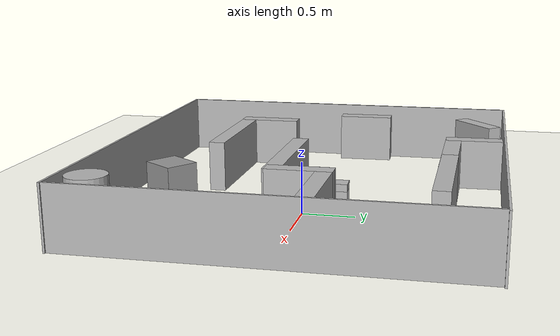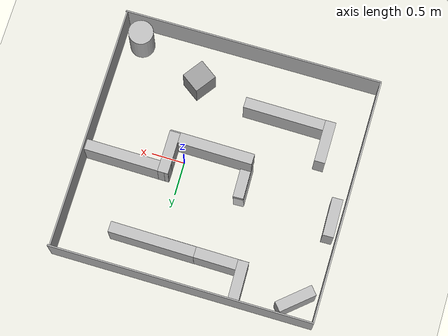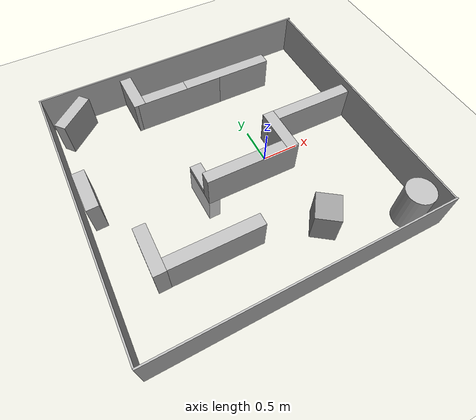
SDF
<sdf version="1.6">
 <world name="default">
  <light name="sun" type="directional">
   <pose>0 0 10 0 -0 0</pose>
   <diffuse>0.8 0.8 0.8 1</diffuse>
   <specular>0.2 0.2 0.2 1</specular>
   <attenuation>
    <range>1000</range>
    <constant>0.9</constant>
    <linear>0.01</linear>
    <quadratic>0.001</quadratic>
   </attenuation>
   <direction>-0.5 0.1 -0.9</direction>
  </light>
  <model name="ground_plane">
   <static>1</static>
   <link name="link">
    <collision name="collision">
     <geometry><plane><normal>0 0 1</normal><size>100 100</size></plane></geometry>
     <surface><friction><ode><mu>100</mu><mu2>50</mu2></ode></friction></surface>
    </collision>
    <visual name="visual">
     <cast_shadows>0</cast_shadows>
     <geometry><plane><normal>0 0 1</normal><size>100 100</size></plane></geometry>
     <material>
      <script><uri>file://media/materials/scripts/gazebo.material</uri><name>Gazebo/Grey</name></script>
     </material>
    </visual>
   </link>
  </model>
  <gravity>0 0 -9.8</gravity>
  <magnetic_field>6e-06 2.3e-05 -4.2e-05</magnetic_field>
  <atmosphere type="adiabatic"/>
  <physics name="default_physics" default="0" type="ode">
   <max_step_size>0.001</max_step_size>
   <real_time_factor>1</real_time_factor>
   <real_time_update_rate>1000</real_time_update_rate>
  </physics>
  <scene><ambient>0.4 0.4 0.4 1</ambient><background>0.7 0.7 0.7 1</background><shadows>1</shadows></scene>
  <spherical_coordinates>
   <surface_model>EARTH_WGS84</surface_model>
   <latitude_deg>0</latitude_deg>
   <longitude_deg>0</longitude_deg>
   <elevation>0</elevation>
   <heading_deg>0</heading_deg>
  </spherical_coordinates>
  <model name="border_Top">
   <pose>-0.50055 1.84001 0.3 -1.4e-05 -0 -4e-06</pose>
   <static>1</static>
   <link name="link">
    <collision name="collision">
     <geometry><box><size>3.9204 0.02 0.6</size></box></geometry>
     <surface><friction><ode><mu>0.01</mu><mu2>0.01</mu2></ode></friction></surface>
    </collision>
    <visual name="visual"><geometry><box><size>3.9204 0.02 0.6</size></box></geometry></visual>
    <inertial>
     <inertia><ixx>1</ixx><ixy>0</ixy><ixz>0</ixz><iyy>1</iyy><iyz>0</iyz><izz>1</izz></inertia>
     <mass>1</mass>
    </inertial>
   </link>
  </model>
  <model name="border_Bot">
   <static>1</static>
   <pose>-0.503699 -1.84002 0.3 1e-05 -0 2e-06</pose>
   <link name="link">
    <collision name="collision">
     <geometry><box><size>3.90283 0.02 0.6</size></box></geometry>
     <surface><friction><ode><mu>0.01</mu><mu2>0.01</mu2></ode></friction></surface>
    </collision>
    <visual name="visual"><geometry><box><size>3.90283 0.02 0.6</size></box></geometry></visual>
    <inertial>
     <inertia><ixx>1</ixx><ixy>0</ixy><ixz>0</ixz><iyy>1</iyy><iyz>0</iyz><izz>1</izz></inertia>
     <mass>1</mass>
    </inertial>
   </link>
  </model>
  <model name="border_Left">
   <static>1</static>
   <pose>-2.45001 5e-06 0.3 0 7e-06 0</pose>
   <link name="link">
    <collision name="collision">
     <geometry><box><size>0.02 3.66 0.6</size></box></geometry>
     <surface><friction><ode><mu>0.01</mu><mu2>0.01</mu2></ode></friction></surface>
    </collision>
    <visual name="visual"><geometry><box><size>0.02 3.66 0.6</size></box></geometry></visual>
    <inertial>
     <inertia><ixx>1</ixx><ixy>0</ixy><ixz>0</ixz><iyy>1</iyy><iyz>0</iyz><izz>1</izz></inertia>
     <mass>1</mass>
    </inertial>
   </link>
  </model>
  <model name="border_Right">
   <static>1</static>
   <pose>1.42515 -1e-06 0.299992 0 -8e-06 -1e-06</pose>
   <link name="link">
    <collision name="collision">
     <geometry><box><size>0.02 3.66 0.6</size></box></geometry>
     <surface><friction><ode><mu>0.01</mu><mu2>0.01</mu2></ode></friction></surface>
    </collision>
    <visual name="visual"><geometry><box><size>0.02 3.66 0.6</size></box></geometry></visual>
    <inertial>
     <inertia><ixx>1</ixx><ixy>0</ixy><ixz>0</ixz><iyy>1</iyy><iyz>0</iyz><izz>1</izz></inertia>
     <mass>1</mass>
    </inertial>
   </link>
  </model>
  <model name="cylinder_1_clone">
   <pose>1.13618 -1.57896 0.3 0 -0 0</pose>
   <static>1</static>
   <link name="link">
    <collision name="collision">
     <geometry><cylinder><radius>0.185832</radius><length>0.6</length></cylinder></geometry>
    </collision>
    <visual name="visual">
     <geometry><cylinder><radius>0.185832</radius><length>0.6</length></cylinder></geometry>
    </visual>
   </link>
  </model>
  <model name="box_1_clone">
   <static>1</static>
   <pose>-1.90949 -0.769164 0.250006 0 3e-06 0.005197</pose>
   <link name="link">
    <collision name="collision">
     <geometry><box><size>0.16 0.633249 0.5</size></box></geometry>
     <surface><friction><ode><mu>0.01</mu><mu2>0.01</mu2></ode></friction></surface>
    </collision>
    <visual name="visual"><geometry><box><size>0.16 0.633249 0.5</size></box></geometry></visual>
    <inertial>
     <inertia><ixx>1</ixx><ixy>0</ixy><ixz>0</ixz><iyy>1</iyy><iyz>0</iyz><izz>1</izz></inertia>
     <mass>1</mass>
    </inertial>
   </link>
  </model>
  <model name="box_1_clone_0">
   <static>1</static>
   <pose>-1.26202 -1.00781 0.250001 3e-06 0 1.56158</pose>
   <link name="link">
    <collision name="collision">
     <geometry><box><size>0.16 1.27479 0.5</size></box></geometry>
     <surface><friction><ode><mu>0.01</mu><mu2>0.01</mu2></ode></friction></surface>
    </collision>
    <visual name="visual"><geometry><box><size>0.16 1.27479 0.5</size></box></geometry></visual>
    <inertial>
     <inertia><ixx>1</ixx><ixy>0</ixy><ixz>0</ixz><iyy>1</iyy><iyz>0</iyz><izz>1</izz></inertia>
     <mass>1</mass>
    </inertial>
   </link>
  </model>
  <model name="box_1_clone_clone">
   <static>1</static>
   <pose>-1.27231 1.53817 0.250008 0 -3e-06 -3.117</pose>
   <link name="link">
    <collision name="collision">
     <geometry><box><size>0.16 0.572947 0.5</size></box></geometry>
     <surface><friction><ode><mu>0.01</mu><mu2>0.01</mu2></ode></friction></surface>
    </collision>
    <visual name="visual"><geometry><box><size>0.16 0.572947 0.5</size></box></geometry></visual>
    <inertial>
     <inertia><ixx>1</ixx><ixy>0</ixy><ixz>0</ixz><iyy>1</iyy><iyz>0</iyz><izz>1</izz></inertia>
     <mass>1</mass>
    </inertial>
   </link>
  </model>
  <model name="unit_box">
   <pose>0.131584 -1.21437 0.238129 0 0 -0.619526</pose>
   <link name="link">
    <inertial>
     <mass>1</mass>
     <inertia>
      <ixx>0.166667</ixx>
      <ixy>0</ixy>
      <ixz>0</ixz>
      <iyy>0.166667</iyy>
      <iyz>0</iyz>
      <izz>0.166667</izz>
     </inertia>
    </inertial>
    <collision name="collision">
     <geometry><box><size>0.319158 0.355382 0.476258</size></box></geometry>
    </collision>
    <visual name="visual">
     <geometry><box><size>0.319158 0.355382 0.476258</size></box></geometry>
     <material>
      <script><name>Gazebo/Grey</name><uri>file://media/materials/scripts/gazebo.material</uri></script>
     </material>
    </visual>
   </link>
  </model>
  <model name="box_1_clone_0_clone">
   <static>1</static>
   <pose>-0.344716 -0.22185 0.249999 3e-06 0 1.56158</pose>
   <link name="link">
    <collision name="collision">
     <geometry><box><size>0.16 1.27479 0.5</size></box></geometry>
     <surface><friction><ode><mu>0.01</mu><mu2>0.01</mu2></ode></friction></surface>
    </collision>
    <visual name="visual"><geometry><box><size>0.16 1.27479 0.5</size></box></geometry></visual>
    <inertial>
     <inertia><ixx>1</ixx><ixy>0</ixy><ixz>0</ixz><iyy>1</iyy><iyz>0</iyz><izz>1</izz></inertia>
     <mass>1</mass>
    </inertial>
   </link>
  </model>
  <model name="box_1_clone_clone_0">
   <static>1</static>
   <pose>0.217124 0.025524 0.250006 0 3e-06 0.005197</pose>
   <link name="link">
    <collision name="collision">
     <geometry><box><size>0.16 0.633249 0.5</size></box></geometry>
     <surface><friction><ode><mu>0.01</mu><mu2>0.01</mu2></ode></friction></surface>
    </collision>
    <visual name="visual"><geometry><box><size>0.16 0.633249 0.5</size></box></geometry></visual>
    <inertial>
     <inertia><ixx>1</ixx><ixy>0</ixy><ixz>0</ixz><iyy>1</iyy><iyz>0</iyz><izz>1</izz></inertia>
     <mass>1</mass>
    </inertial>
   </link>
  </model>
  <model name="box_1_clone_0_clone_clone">
   <static>1</static>
   <pose>0.772221 0.256731 0.249999 3e-06 0 1.56158</pose>
   <link name="link">
    <collision name="collision">
     <geometry><box><size>0.16 1.27479 0.5</size></box></geometry>
     <surface><friction><ode><mu>0.01</mu><mu2>0.01</mu2></ode></friction></surface>
    </collision>
    <visual name="visual"><geometry><box><size>0.16 1.27479 0.5</size></box></geometry></visual>
    <inertial>
     <inertia><ixx>1</ixx><ixy>0</ixy><ixz>0</ixz><iyy>1</iyy><iyz>0</iyz><izz>1</izz></inertia>
     <mass>1</mass>
    </inertial>
   </link>
  </model>
  <model name="box_1_clone_0_clone_clone_0">
   <static>1</static>
   <pose>-0.703924 1.32571 0.249999 3e-06 0 1.56158</pose>
   <link name="link">
    <collision name="collision">
     <geometry><box><size>0.16 1.27479 0.5</size></box></geometry>
     <surface><friction><ode><mu>0.01</mu><mu2>0.01</mu2></ode></friction></surface>
    </collision>
    <visual name="visual"><geometry><box><size>0.16 1.27479 0.5</size></box></geometry></visual>
    <inertial>
     <inertia><ixx>1</ixx><ixy>0</ixy><ixz>0</ixz><iyy>1</iyy><iyz>0</iyz><izz>1</izz></inertia>
     <mass>1</mass>
    </inertial>
   </link>
  </model>
  <model name="box_1_clone_0_clone_clone_1">
   <static>1</static>
   <pose>0.072384 1.3206 0.249999 3e-06 0 1.56158</pose>
   <link name="link">
    <collision name="collision">
     <geometry><box><size>0.16 1.27479 0.5</size></box></geometry>
     <surface><friction><ode><mu>0.01</mu><mu2>0.01</mu2></ode></friction></surface>
    </collision>
    <visual name="visual"><geometry><box><size>0.16 1.27479 0.5</size></box></geometry></visual>
    <inertial>
     <inertia><ixx>1</ixx><ixy>0</ixy><ixz>0</ixz><iyy>1</iyy><iyz>0</iyz><izz>1</izz></inertia>
     <mass>1</mass>
    </inertial>
   </link>
  </model>
  <model name="box_1_clone_clone_clone">
   <static>1</static>
   <pose>-2.31274 0.281652 0.250008 0 -3e-06 -3.117</pose>
   <link name="link">
    <collision name="collision">
     <geometry><box><size>0.16 0.572947 0.5</size></box></geometry>
     <surface><friction><ode><mu>0.01</mu><mu2>0.01</mu2></ode></friction></surface>
    </collision>
    <visual name="visual"><geometry><box><size>0.16 0.572947 0.5</size></box></geometry></visual>
    <inertial>
     <inertia><ixx>1</ixx><ixy>0</ixy><ixz>0</ixz><iyy>1</iyy><iyz>0</iyz><izz>1</izz></inertia>
     <mass>1</mass>
    </inertial>
   </link>
  </model>
  <model name="box_1_clone_clone_clone_clone">
   <static>1</static>
   <pose>-2.11901 1.55914 0.250008 2e-06 -2e-06 2.28383</pose>
   <link name="link">
    <collision name="collision">
     <geometry><box><size>0.16 0.572947 0.5</size></box></geometry>
     <surface><friction><ode><mu>0.01</mu><mu2>0.01</mu2></ode></friction></surface>
    </collision>
    <visual name="visual"><geometry><box><size>0.16 0.572947 0.5</size></box></geometry></visual>
    <inertial>
     <inertia><ixx>1</ixx><ixy>0</ixy><ixz>0</ixz><iyy>1</iyy><iyz>0</iyz><izz>1</izz></inertia>
     <mass>1</mass>
    </inertial>
   </link>
  </model>
  <model name="box_1_clone_clone_clone_clone_0">
   <static>1</static>
   <pose>-0.909458 0.006901 -0.174599 3.14159 0.028093 0.024593</pose>
   <link name="link">
    <collision name="collision">
     <geometry><box><size>0.16 0.572947 0.5</size></box></geometry>
     <surface><friction><ode><mu>0.01</mu><mu2>0.01</mu2></ode></friction></surface>
    </collision>
    <visual name="visual"><geometry><box><size>0.16 0.572947 0.5</size></box></geometry></visual>
    <inertial>
     <inertia><ixx>1</ixx><ixy>0</ixy><ixz>0</ixz><iyy>1</iyy><iyz>0</iyz><izz>1</izz></inertia>
     <mass>1</mass>
    </inertial>
   </link>
  </model>
 </world>
</sdf>
